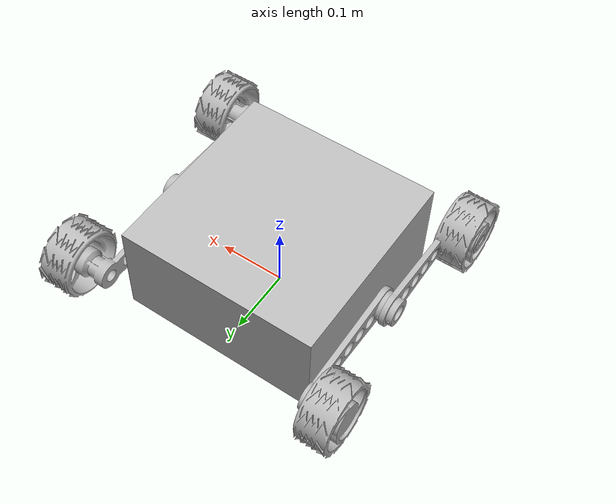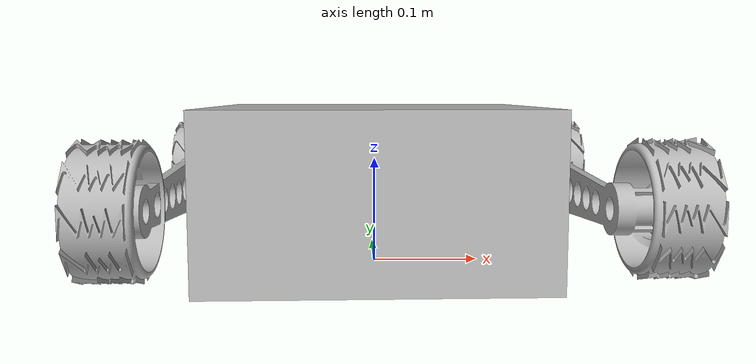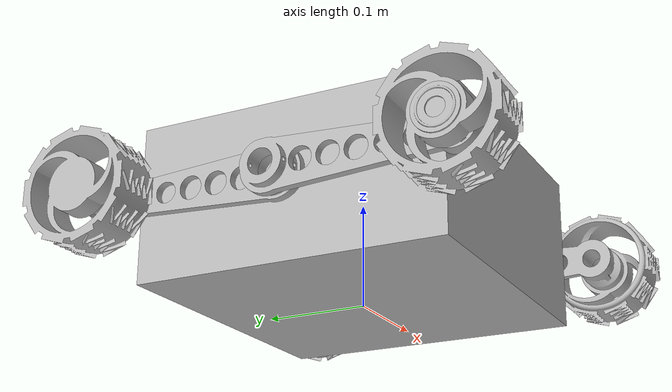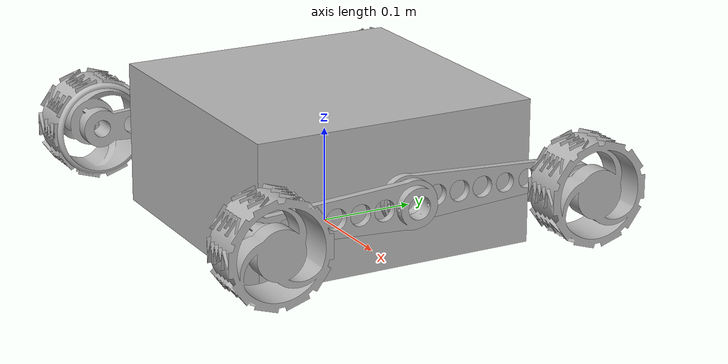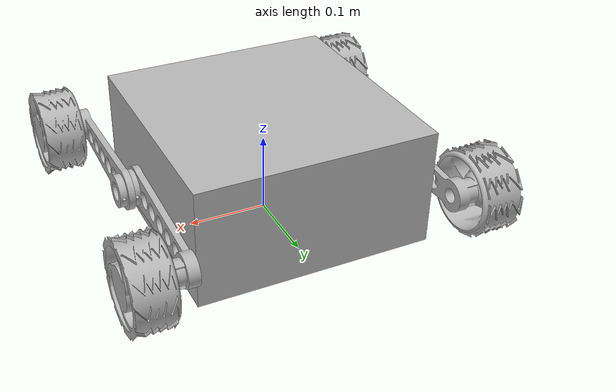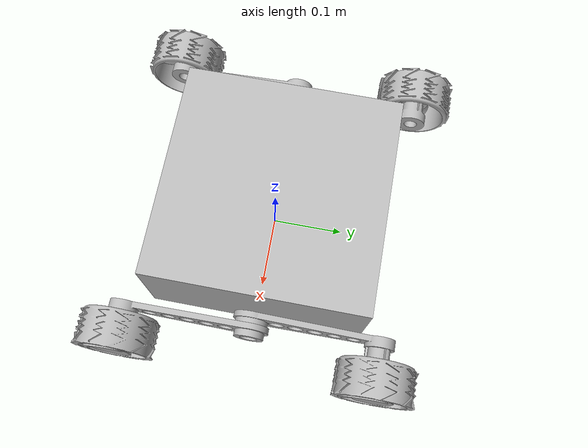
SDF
<?xml version='1.0'?>
<sdf version="1.5">
<model name="octanis1_rover_model">
  <static>false</static>
  <pose>0 0 0.075 0 0 0</pose>
    <link name="rover_body">
      <inertial>
        <mass>1.0</mass>
        <inertia> <!-- interias are tricky to compute -->
          <!-- http://answers.gazebosim.org/question/4372/the-inertia-matrix-explained/ -->
          <ixx>0.083</ixx>       <!-- for a box: ixx = 0.083 * mass * (y*y + z*z) -->
          <ixy>0.0</ixy>         <!-- for a box: ixy = 0 -->
          <ixz>0.0</ixz>         <!-- for a box: ixz = 0 -->
          <iyy>0.083</iyy>       <!-- for a box: iyy = 0.083 * mass * (x*x + z*z) -->
          <iyz>0.0</iyz>         <!-- for a box: iyz = 0 -->
          <izz>0.083</izz>       <!-- for a box: izz = 0.083 * mass * (x*x + y*y) -->
        </inertia>
      </inertial>
      <collision name="collision">
        <geometry>
          <box>
            <size>0.3 0.3 0.15</size>
          </box>
        </geometry>
      </collision>
      <visual name="visual">
        <geometry>
          <box>
            <size>0.3 0.3 0.15</size>
          </box>
        </geometry>
      </visual>
    </link>

    <link name="left_strut_out">
      <pose>0.16 0.172 0 0 1.5707 0</pose>
      <inertial>
        <mass>0.1</mass>
        <inertia> <!-- interias are tricky to compute -->
          <!-- http://answers.gazebosim.org/question/4372/the-inertia-matrix-explained/ -->
          <ixx>0.083</ixx>       <!-- for a box: ixx = 0.083 * mass * (y*y + z*z) -->
          <ixy>0.0</ixy>         <!-- for a box: ixy = 0 -->
          <ixz>0.0</ixz>         <!-- for a box: ixz = 0 -->
          <iyy>0.083</iyy>       <!-- for a box: iyy = 0.083 * mass * (x*x + z*z) -->
          <iyz>0.0</iyz>         <!-- for a box: iyz = 0 -->
          <izz>0.083</izz>       <!-- for a box: izz = 0.083 * mass * (x*x + y*y) -->
        </inertia>
      </inertial>
      <collision name="collision">
        <geometry>
          <mesh>
            <uri>model://octanis1_rover_model/meshes/Strut_Rev_Umea_METERS.dae</uri>
          </mesh>
        </geometry>
      </collision>
      <visual name='visual'>
        <geometry>
          <mesh>
            <uri>model://octanis1_rover_model/meshes/Strut_Rev_Umea_METERS.dae</uri>
          </mesh>
        </geometry>
      </visual>
    </link>

    <link name="left_strut_in">
      <pose>0.1752 -0.172 0 3.1414 -1.5707 0</pose>
      <inertial>
        <mass>0.1</mass>
        <inertia> <!-- interias are tricky to compute -->
          <!-- http://answers.gazebosim.org/question/4372/the-inertia-matrix-explained/ -->
          <ixx>0.083</ixx>       <!-- for a box: ixx = 0.083 * mass * (y*y + z*z) -->
          <ixy>0.0</ixy>         <!-- for a box: ixy = 0 -->
          <ixz>0.0</ixz>         <!-- for a box: ixz = 0 -->
          <iyy>0.083</iyy>       <!-- for a box: iyy = 0.083 * mass * (x*x + z*z) -->
          <iyz>0.0</iyz>         <!-- for a box: iyz = 0 -->
          <izz>0.083</izz>       <!-- for a box: izz = 0.083 * mass * (x*x + y*y) -->
        </inertia>
      </inertial>
      <collision name="collision">
        <geometry>
          <mesh>
            <uri>model://octanis1_rover_model/meshes/Strut_INNER_Rev_Umea_METERS.dae</uri>
          </mesh>
        </geometry>
      </collision>
      <visual name='visual'>
        <geometry>
          <mesh>
            <uri>model://octanis1_rover_model/meshes/Strut_INNER_Rev_Umea_METERS.dae</uri>
          </mesh>
        </geometry>
      </visual>
    </link>

    <joint type="revolute" name="left_strut_out_hinge">
        <pose>0.15 0 0 0 0 0</pose>
        <parent>left_strut_out</parent>
        <child>rover_body</child>
        <axis>
          <xyz>1 0 0</xyz>
        </axis>
    </joint>

    <joint type="revolute" name="left_strut_in_hinge">
        <pose>0.15 0 0 0 0 0</pose>
        <parent>left_strut_in</parent>
        <child>rover_body</child>
        <axis>
          <xyz>1 0 0</xyz>
        </axis>
    </joint>

    <link name="left_wheel_in">
      <pose>0.242 -0.172 0 0 -1.5707 0</pose>
      <inertial>
        <mass>0.1</mass>
        <inertia> <!-- interias are tricky to compute -->
          <!-- http://answers.gazebosim.org/question/4372/the-inertia-matrix-explained/ -->
          <ixx>0.083</ixx>       <!-- for a box: ixx = 0.083 * mass * (y*y + z*z) -->
          <ixy>0.0</ixy>         <!-- for a box: ixy = 0 -->
          <ixz>0.0</ixz>         <!-- for a box: ixz = 0 -->
          <iyy>0.083</iyy>       <!-- for a box: iyy = 0.083 * mass * (x*x + z*z) -->
          <iyz>0.0</iyz>         <!-- for a box: iyz = 0 -->
          <izz>0.083</izz>       <!-- for a box: izz = 0.083 * mass * (x*x + y*y) -->
        </inertia>
      </inertial>
      <collision name="collision">
        <geometry>
          <mesh>
            <uri>model://octanis1_rover_model/meshes/Wheel_Rev_Umea_METERS.dae</uri>
          </mesh>
        </geometry>
        <surface>
          <friction>
            <ode>
              <mu>100000.0</mu>
              <mu2>100000.0</mu2>
              <slip1>0.0</slip1>
              <slip2>0.0</slip2>
            </ode>
          </friction>
        </surface>
      </collision>
      <visual name='visual'>
        <geometry>
          <mesh>
            <uri>model://octanis1_rover_model/meshes/Wheel_Rev_Umea_METERS.dae</uri>
          </mesh>
        </geometry>
      </visual>
    </link>

    <link name="left_wheel_out">
      <pose>0.242 0.172 0 0 -1.5707 0</pose>
      <inertial>
        <mass>0.1</mass>
        <inertia> <!-- interias are tricky to compute -->
          <!-- http://answers.gazebosim.org/question/4372/the-inertia-matrix-explained/ -->
          <ixx>0.083</ixx>       <!-- for a box: ixx = 0.083 * mass * (y*y + z*z) -->
          <ixy>0.0</ixy>         <!-- for a box: ixy = 0 -->
          <ixz>0.0</ixz>         <!-- for a box: ixz = 0 -->
          <iyy>0.083</iyy>       <!-- for a box: iyy = 0.083 * mass * (x*x + z*z) -->
          <iyz>0.0</iyz>         <!-- for a box: iyz = 0 -->
          <izz>0.083</izz>       <!-- for a box: izz = 0.083 * mass * (x*x + y*y) -->
        </inertia>
      </inertial>
      <collision name="collision">
        <geometry>
          <mesh>
            <uri>model://octanis1_rover_model/meshes/Wheel_Rev_Umea_METERS.dae</uri>
          </mesh>
        </geometry>
        <surface>
          <friction>
            <ode>
              <mu>100000.0</mu>
              <mu2>100000.0</mu2>
              <slip1>0.0</slip1>
              <slip2>0.0</slip2>
            </ode>
          </friction>
        </surface>
      </collision>
      <visual name='visual'>
        <geometry>
          <mesh>
            <uri>model://octanis1_rover_model/meshes/Wheel_Rev_Umea_METERS.dae</uri>
          </mesh>
        </geometry>
      </visual>
    </link>

    <joint type="revolute" name="left_wheel_in_hinge">
        <pose>0 0 0.01 0 0 0</pose>
        <parent>left_wheel_in</parent>
        <child>left_strut_in</child>
        <axis>
          <xyz>0 0 1</xyz>
        </axis>
    </joint>

    <joint type="revolute" name="left_wheel_out_hinge">
        <pose>0 0 0.01 0 0 0</pose>
        <parent>left_wheel_out</parent>
        <child>left_strut_out</child>
        <axis>
          <xyz>0 0 1</xyz>
        </axis>
    </joint>

    <!-- right side -->

    <link name="right_strut_out">
      <pose>-0.16 0.172 0 0 -1.5707 0</pose>
      <inertial>
        <mass>0.1</mass>
        <inertia> <!-- interias are tricky to compute -->
          <!-- http://answers.gazebosim.org/question/4372/the-inertia-matrix-explained/ -->
          <ixx>0.083</ixx>       <!-- for a box: ixx = 0.083 * mass * (y*y + z*z) -->
          <ixy>0.0</ixy>         <!-- for a box: ixy = 0 -->
          <ixz>0.0</ixz>         <!-- for a box: ixz = 0 -->
          <iyy>0.083</iyy>       <!-- for a box: iyy = 0.083 * mass * (x*x + z*z) -->
          <iyz>0.0</iyz>         <!-- for a box: iyz = 0 -->
          <izz>0.083</izz>       <!-- for a box: izz = 0.083 * mass * (x*x + y*y) -->
        </inertia>
      </inertial>
      <collision name="collision">
        <geometry>
          <mesh>
            <uri>model://octanis1_rover_model/meshes/Strut_Rev_Umea_METERS.dae</uri>
          </mesh>
        </geometry>
      </collision>
      <visual name='visual'>
        <geometry>
          <mesh>
            <uri>model://octanis1_rover_model/meshes/Strut_Rev_Umea_METERS.dae</uri>
          </mesh>
        </geometry>
      </visual>
    </link>

    <link name="right_strut_in">
      <pose>-0.1752 -0.172 0 3.1414 1.5707 0</pose>
      <inertial>
        <mass>0.1</mass>
        <inertia> <!-- interias are tricky to compute -->
          <!-- http://answers.gazebosim.org/question/4372/the-inertia-matrix-explained/ -->
          <ixx>0.083</ixx>       <!-- for a box: ixx = 0.083 * mass * (y*y + z*z) -->
          <ixy>0.0</ixy>         <!-- for a box: ixy = 0 -->
          <ixz>0.0</ixz>         <!-- for a box: ixz = 0 -->
          <iyy>0.083</iyy>       <!-- for a box: iyy = 0.083 * mass * (x*x + z*z) -->
          <iyz>0.0</iyz>         <!-- for a box: iyz = 0 -->
          <izz>0.083</izz>       <!-- for a box: izz = 0.083 * mass * (x*x + y*y) -->
        </inertia>
      </inertial>
      <collision name="collision">
        <geometry>
          <mesh>
            <uri>model://octanis1_rover_model/meshes/Strut_INNER_Rev_Umea_METERS.dae</uri>
          </mesh>
        </geometry>
      </collision>
      <visual name='visual'>
        <geometry>
          <mesh>
            <uri>model://octanis1_rover_model/meshes/Strut_INNER_Rev_Umea_METERS.dae</uri>
          </mesh>
        </geometry>
      </visual>
    </link>

    <joint type="revolute" name="right_strut_out_hinge">
        <pose>-0.15 0 0 0 0 0</pose>
        <parent>right_strut_out</parent>
        <child>rover_body</child>
        <axis>
          <xyz>-1 0 0</xyz>
        </axis>
    </joint>

    <joint type="revolute" name="right_strut_in_hinge">
        <pose>-0.15 0 0 0 0 0</pose>
        <parent>right_strut_in</parent>
        <child>rover_body</child>
        <axis>
          <xyz>1 0 0</xyz>
        </axis>
    </joint>

    <link name="right_wheel_in">
      <pose>-0.222 -0.172 0 0 1.5707 0</pose>
      <inertial>
        <mass>0.1</mass>
        <inertia> <!-- interias are tricky to compute -->
          <!-- http://answers.gazebosim.org/question/4372/the-inertia-matrix-explained/ -->
          <ixx>0.083</ixx>       <!-- for a box: ixx = 0.083 * mass * (y*y + z*z) -->
          <ixy>0.0</ixy>         <!-- for a box: ixy = 0 -->
          <ixz>0.0</ixz>         <!-- for a box: ixz = 0 -->
          <iyy>0.083</iyy>       <!-- for a box: iyy = 0.083 * mass * (x*x + z*z) -->
          <iyz>0.0</iyz>         <!-- for a box: iyz = 0 -->
          <izz>0.083</izz>       <!-- for a box: izz = 0.083 * mass * (x*x + y*y) -->
        </inertia>
      </inertial>
      <collision name="collision">
        <geometry>
          <mesh>
            <uri>model://octanis1_rover_model/meshes/Wheel_Rev_Umea_METERS.dae</uri>
          </mesh>
        </geometry>
        <surface>
          <friction>
            <ode>
              <mu>100000.0</mu>
              <mu2>100000.0</mu2>
              <slip1>0.0</slip1>
              <slip2>0.0</slip2>
            </ode>
          </friction>
        </surface>
      </collision>
      <visual name='visual'>
        <geometry>
          <mesh>
            <uri>model://octanis1_rover_model/meshes/Wheel_Rev_Umea_METERS.dae</uri>
          </mesh>
        </geometry>
      </visual>
    </link>

    <link name="right_wheel_out">
      <pose>-0.222 0.172 0 0 1.5707 0</pose>
      <inertial>
        <mass>0.1</mass>
        <inertia> <!-- interias are tricky to compute -->
          <!-- http://answers.gazebosim.org/question/4372/the-inertia-matrix-explained/ -->
          <ixx>0.083</ixx>       <!-- for a box: ixx = 0.083 * mass * (y*y + z*z) -->
          <ixy>0.0</ixy>         <!-- for a box: ixy = 0 -->
          <ixz>0.0</ixz>         <!-- for a box: ixz = 0 -->
          <iyy>0.083</iyy>       <!-- for a box: iyy = 0.083 * mass * (x*x + z*z) -->
          <iyz>0.0</iyz>         <!-- for a box: iyz = 0 -->
          <izz>0.083</izz>       <!-- for a box: izz = 0.083 * mass * (x*x + y*y) -->
        </inertia>
      </inertial>
      <collision name="collision">
        <geometry>
          <mesh>
            <uri>model://octanis1_rover_model/meshes/Wheel_Rev_Umea_METERS.dae</uri>
          </mesh>
        </geometry>
        <surface>
          <friction>
            <ode>
              <mu>100000.0</mu>
              <mu2>100000.0</mu2>
              <slip1>0.0</slip1>
              <slip2>0.0</slip2>
            </ode>
          </friction>
        </surface>
      </collision>
      <visual name='visual'>
        <geometry>
          <mesh>
            <uri>model://octanis1_rover_model/meshes/Wheel_Rev_Umea_METERS.dae</uri>
          </mesh>
        </geometry>
      </visual>
    </link>

    <joint type="revolute" name="right_wheel_in_hinge">
        <pose>0 0 0.01 0 0 0</pose>
        <parent>right_wheel_in</parent>
        <child>right_strut_in</child>
        <axis>
          <xyz>0 0 1</xyz>
        </axis>
    </joint>

    <joint type="revolute" name="right_wheel_out_hinge">
        <pose>0 0 0.01 0 0 0</pose>
        <parent>right_wheel_out</parent>
        <child>right_strut_out</child>
        <axis>
          <xyz>0 0 1</xyz>
        </axis>
    </joint>

  </model>
</sdf>
